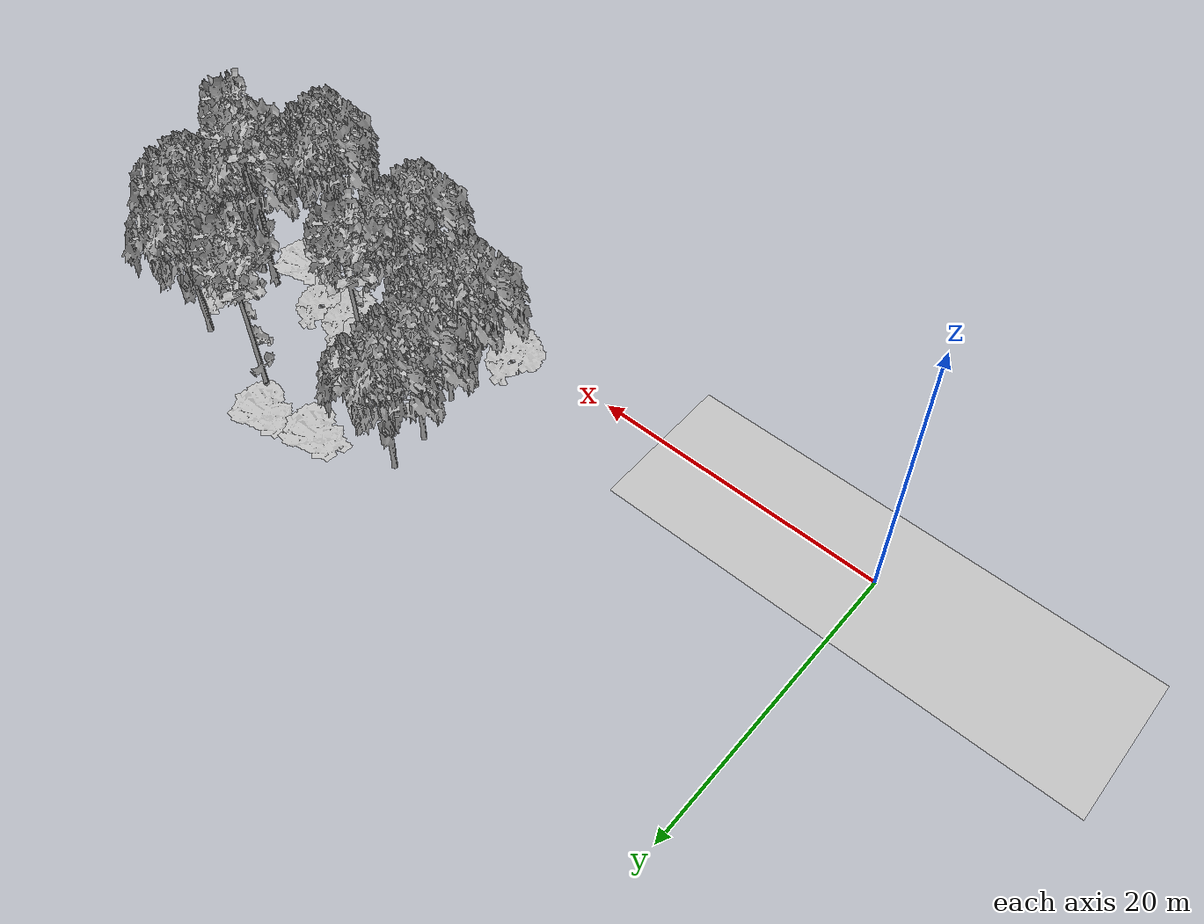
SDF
<sdf version="1.7">
 <world name="default">
  <model name="ground_plane">
   <static>1</static>
   <link name="link">
    <collision name="collision">
     <pose>-50 0 0 0 -0 0</pose>
     <geometry><plane><normal>0 0 1</normal><size>100 100</size></plane></geometry>
     <surface><contact><ode><min_depth>0.01</min_depth><max_vel>0</max_vel></ode></contact></surface>
    </collision>
    <visual name="grass">
     <cast_shadows>0</cast_shadows>
     <geometry>
      <mesh>
       <scale>0.5814285714285714 0.18142857142857144 0.1</scale>
       <uri>file://grass_plane/meshes/grass_plane.dae</uri>
      </mesh>
     </geometry>
    </visual>
   </link>
  </model>
  <model name="Tree 0">
   <static>1</static>
   <pose>47.69252094666231 9.249128996621579 0 1.57079 -0 0</pose>
   <link name="link">
    <collision name="collision">
     <geometry><mesh><scale>3.5 5 3.5</scale><uri>model://tree_2/meshes/tree_2.obj</uri></mesh></geometry>
    </collision>
    <visual name="visual">
     <geometry><mesh><scale>3.5 5 3.5</scale><uri>model://tree_2/meshes/tree_2.obj</uri></mesh></geometry>
    </visual>
   </link>
  </model>
  <model name="Tree 2">
   <static>1</static>
   <pose>45.17606604609456 9.419935993296292 0 1.57079 -0 0</pose>
   <link name="link">
    <collision name="collision">
     <geometry><mesh><scale>4 2.5 4</scale><uri>model://tree_1/meshes/tree_1.obj</uri></mesh></geometry>
    </collision>
    <visual name="visual">
     <geometry><mesh><scale>4 2.5 4</scale><uri>model://tree_1/meshes/tree_1.obj</uri></mesh></geometry>
    </visual>
   </link>
  </model>
  <model name="Tree 6">
   <static>1</static>
   <pose>27.85685735956963 6.043179859401473 0 1.57079 -0 0</pose>
   <link name="link">
    <collision name="collision">
     <geometry><mesh><scale>3.5 5 3.5</scale><uri>model://tree_2/meshes/tree_2.obj</uri></mesh></geometry>
    </collision>
    <visual name="visual">
     <geometry><mesh><scale>3.5 5 3.5</scale><uri>model://tree_2/meshes/tree_2.obj</uri></mesh></geometry>
    </visual>
   </link>
  </model>
  <model name="Tree 10">
   <static>1</static>
   <pose>43.063630282127505 1.636747581096646 0 1.57079 -0 0</pose>
   <link name="link">
    <collision name="collision">
     <geometry><mesh><scale>3.5 5 3.5</scale><uri>model://tree_2/meshes/tree_2.obj</uri></mesh></geometry>
    </collision>
    <visual name="visual">
     <geometry><mesh><scale>3.5 5 3.5</scale><uri>model://tree_2/meshes/tree_2.obj</uri></mesh></geometry>
    </visual>
   </link>
  </model>
  <model name="Tree 20">
   <static>1</static>
   <pose>36.97406588445705 5.96686435955484 0 1.57079 -0 0</pose>
   <link name="link">
    <collision name="collision">
     <geometry><mesh><scale>4 2.5 4</scale><uri>model://tree_1/meshes/tree_1.obj</uri></mesh></geometry>
    </collision>
    <visual name="visual">
     <geometry><mesh><scale>4 2.5 4</scale><uri>model://tree_1/meshes/tree_1.obj</uri></mesh></geometry>
    </visual>
   </link>
  </model>
  <model name="Tree 22">
   <static>1</static>
   <pose>44.34264651618197 0.5009626305823183 0 1.57079 -0 0</pose>
   <link name="link">
    <collision name="collision">
     <geometry><mesh><scale>3.5 5 3.5</scale><uri>model://tree_2/meshes/tree_2.obj</uri></mesh></geometry>
    </collision>
    <visual name="visual">
     <geometry><mesh><scale>3.5 5 3.5</scale><uri>model://tree_2/meshes/tree_2.obj</uri></mesh></geometry>
    </visual>
   </link>
  </model>
  <model name="Tree 60">
   <static>1</static>
   <pose>47.26608044529942 4.550124384975735 0 1.57079 -0 0</pose>
   <link name="link">
    <collision name="collision">
     <geometry><mesh><scale>3.5 5 3.5</scale><uri>model://tree_2/meshes/tree_2.obj</uri></mesh></geometry>
    </collision>
    <visual name="visual">
     <geometry><mesh><scale>3.5 5 3.5</scale><uri>model://tree_2/meshes/tree_2.obj</uri></mesh></geometry>
    </visual>
   </link>
  </model>
  <model name="Tree 66">
   <static>1</static>
   <pose>42.94449287600038 4.460168175037616 0 1.57079 -0 0</pose>
   <link name="link">
    <collision name="collision">
     <geometry><mesh><scale>3 2 3</scale><uri>model://tree_3/meshes/tree_3.obj</uri></mesh></geometry>
    </collision>
    <visual name="visual">
     <geometry><mesh><scale>3 2 3</scale><uri>model://tree_3/meshes/tree_3.obj</uri></mesh></geometry>
    </visual>
   </link>
  </model>
  <model name="Tree 69">
   <static>1</static>
   <pose>26.464764092301962 1.460674844424517 0 1.57079 -0 0</pose>
   <link name="link">
    <collision name="collision">
     <geometry><mesh><scale>4 2.5 4</scale><uri>model://tree_1/meshes/tree_1.obj</uri></mesh></geometry>
    </collision>
    <visual name="visual">
     <geometry><mesh><scale>4 2.5 4</scale><uri>model://tree_1/meshes/tree_1.obj</uri></mesh></geometry>
    </visual>
   </link>
  </model>
  <model name="Tree 76">
   <static>1</static>
   <pose>31.949349481406188 9.075599408367399 0 1.57079 -0 0</pose>
   <link name="link">
    <collision name="collision">
     <geometry><mesh><scale>3.5 5 3.5</scale><uri>model://tree_9/meshes/tree_9.obj</uri></mesh></geometry>
    </collision>
    <visual name="visual">
     <geometry><mesh><scale>3.5 5 3.5</scale><uri>model://tree_9/meshes/tree_9.obj</uri></mesh></geometry>
    </visual>
   </link>
  </model>
  <model name="Tree 77">
   <static>1</static>
   <pose>44.186904276814815 12.239279741420905 0 1.57079 -0 0</pose>
   <link name="link">
    <collision name="collision">
     <geometry><mesh><scale>3.5 5 3.5</scale><uri>model://tree_2/meshes/tree_2.obj</uri></mesh></geometry>
    </collision>
    <visual name="visual">
     <geometry><mesh><scale>3.5 5 3.5</scale><uri>model://tree_2/meshes/tree_2.obj</uri></mesh></geometry>
    </visual>
   </link>
  </model>
  <model name="Tree 80">
   <static>1</static>
   <pose>39.32447225169264 6.1075104467018555 0 1.57079 -0 0</pose>
   <link name="link">
    <collision name="collision">
     <geometry><mesh><scale>4 2.5 4</scale><uri>model://tree_1/meshes/tree_1.obj</uri></mesh></geometry>
    </collision>
    <visual name="visual">
     <geometry><mesh><scale>4 2.5 4</scale><uri>model://tree_1/meshes/tree_1.obj</uri></mesh></geometry>
    </visual>
   </link>
  </model>
  <model name="Tree 88">
   <static>1</static>
   <pose>26.93830738663199 9.390242233203352 0 1.57079 -0 0</pose>
   <link name="link">
    <collision name="collision">
     <geometry><mesh><scale>3.5 5 3.5</scale><uri>model://tree_2/meshes/tree_2.obj</uri></mesh></geometry>
    </collision>
    <visual name="visual">
     <geometry><mesh><scale>3.5 5 3.5</scale><uri>model://tree_2/meshes/tree_2.obj</uri></mesh></geometry>
    </visual>
   </link>
  </model>
  <model name="Tree 96">
   <static>1</static>
   <pose>45.707799784251335 6.318585668160146 0 1.57079 -0 0</pose>
   <link name="link">
    <collision name="collision">
     <geometry><mesh><scale>3.5 5 3.5</scale><uri>model://tree_2/meshes/tree_2.obj</uri></mesh></geometry>
    </collision>
    <visual name="visual">
     <geometry><mesh><scale>3.5 5 3.5</scale><uri>model://tree_2/meshes/tree_2.obj</uri></mesh></geometry>
    </visual>
   </link>
  </model>
  <model name="Tree 101">
   <static>1</static>
   <pose>31.53944135913929 13.863119856497445 0 1.57079 -0 0</pose>
   <link name="link">
    <collision name="collision">
     <geometry><mesh><scale>3 2 3</scale><uri>model://tree_3/meshes/tree_3.obj</uri></mesh></geometry>
    </collision>
    <visual name="visual">
     <geometry><mesh><scale>3 2 3</scale><uri>model://tree_3/meshes/tree_3.obj</uri></mesh></geometry>
    </visual>
   </link>
  </model>
  <model name="Tree 115">
   <static>1</static>
   <pose>34.54999365718001 1.5102973961908006 0 1.57079 -0 0</pose>
   <link name="link">
    <collision name="collision">
     <geometry><mesh><scale>3.5 5 3.5</scale><uri>model://tree_2/meshes/tree_2.obj</uri></mesh></geometry>
    </collision>
    <visual name="visual">
     <geometry><mesh><scale>3.5 5 3.5</scale><uri>model://tree_2/meshes/tree_2.obj</uri></mesh></geometry>
    </visual>
   </link>
  </model>
  <model name="Tree 134">
   <static>1</static>
   <pose>34.52475497261703 4.252798151117705 0 1.57079 -0 0</pose>
   <link name="link">
    <collision name="collision">
     <geometry><mesh><scale>3.5 5 3.5</scale><uri>model://tree_2/meshes/tree_2.obj</uri></mesh></geometry>
    </collision>
    <visual name="visual">
     <geometry><mesh><scale>3.5 5 3.5</scale><uri>model://tree_2/meshes/tree_2.obj</uri></mesh></geometry>
    </visual>
   </link>
  </model>
  <model name="Tree 142">
   <static>1</static>
   <pose>36.00970376020581 13.887997666411763 0 1.57079 -0 0</pose>
   <link name="link">
    <collision name="collision">
     <geometry><mesh><scale>3.5 5 3.5</scale><uri>model://tree_9/meshes/tree_9.obj</uri></mesh></geometry>
    </collision>
    <visual name="visual">
     <geometry><mesh><scale>3.5 5 3.5</scale><uri>model://tree_9/meshes/tree_9.obj</uri></mesh></geometry>
    </visual>
   </link>
  </model>
  <model name="Tree 147">
   <static>1</static>
   <pose>34.85189379325897 7.658461677325654 0 1.57079 -0 0</pose>
   <link name="link">
    <collision name="collision">
     <geometry><mesh><scale>4 2.5 4</scale><uri>model://tree_1/meshes/tree_1.obj</uri></mesh></geometry>
    </collision>
    <visual name="visual">
     <geometry><mesh><scale>4 2.5 4</scale><uri>model://tree_1/meshes/tree_1.obj</uri></mesh></geometry>
    </visual>
   </link>
  </model>
  <model name="Tree 164">
   <static>1</static>
   <pose>44.88515686620177 6.206617002883267 0 1.57079 -0 0</pose>
   <link name="link">
    <collision name="collision">
     <geometry><mesh><scale>3.5 5 3.5</scale><uri>model://tree_9/meshes/tree_9.obj</uri></mesh></geometry>
    </collision>
    <visual name="visual">
     <geometry><mesh><scale>3.5 5 3.5</scale><uri>model://tree_9/meshes/tree_9.obj</uri></mesh></geometry>
    </visual>
   </link>
  </model>
  <model name="Tree 168">
   <static>1</static>
   <pose>27.414200977271634 4.247931997860945 0 1.57079 -0 0</pose>
   <link name="link">
    <collision name="collision">
     <geometry><mesh><scale>3.5 5 3.5</scale><uri>model://tree_2/meshes/tree_2.obj</uri></mesh></geometry>
    </collision>
    <visual name="visual">
     <geometry><mesh><scale>3.5 5 3.5</scale><uri>model://tree_2/meshes/tree_2.obj</uri></mesh></geometry>
    </visual>
   </link>
  </model>
  <model name="Tree 171">
   <static>1</static>
   <pose>26.73631400750625 12.105524323133725 0 1.57079 -0 0</pose>
   <link name="link">
    <collision name="collision">
     <geometry><mesh><scale>3.5 5 3.5</scale><uri>model://tree_2/meshes/tree_2.obj</uri></mesh></geometry>
    </collision>
    <visual name="visual">
     <geometry><mesh><scale>3.5 5 3.5</scale><uri>model://tree_2/meshes/tree_2.obj</uri></mesh></geometry>
    </visual>
   </link>
  </model>
  <model name="Tree 177">
   <static>1</static>
   <pose>35.26290352819774 14.733955515960645 0 1.57079 -0 0</pose>
   <link name="link">
    <collision name="collision">
     <geometry><mesh><scale>3 2 3</scale><uri>model://tree_3/meshes/tree_3.obj</uri></mesh></geometry>
    </collision>
    <visual name="visual">
     <geometry><mesh><scale>3 2 3</scale><uri>model://tree_3/meshes/tree_3.obj</uri></mesh></geometry>
    </visual>
   </link>
  </model>
 </world>
</sdf>
